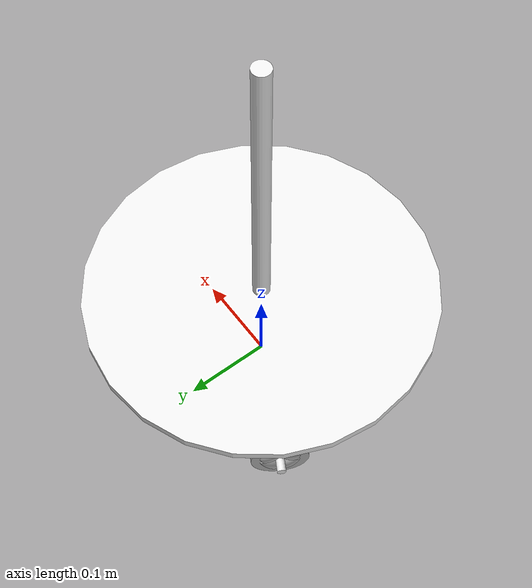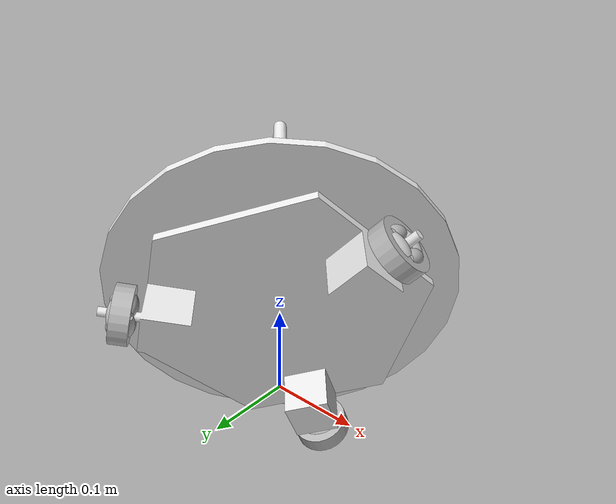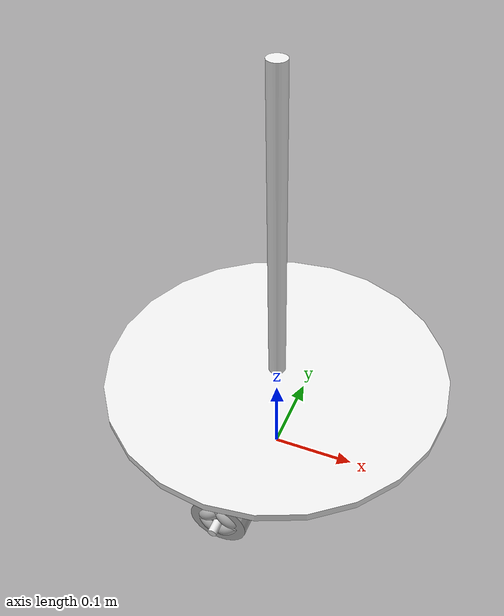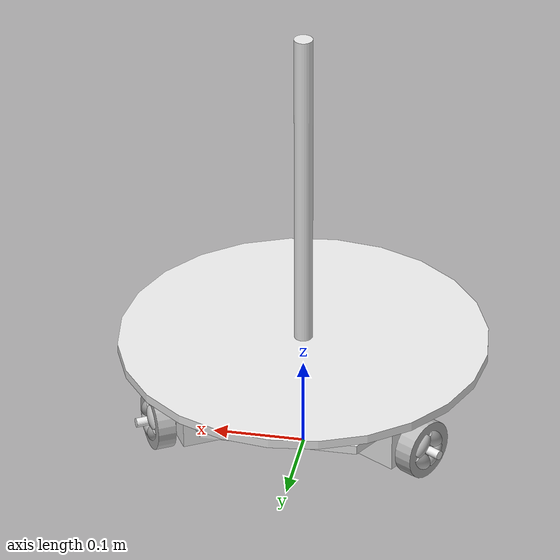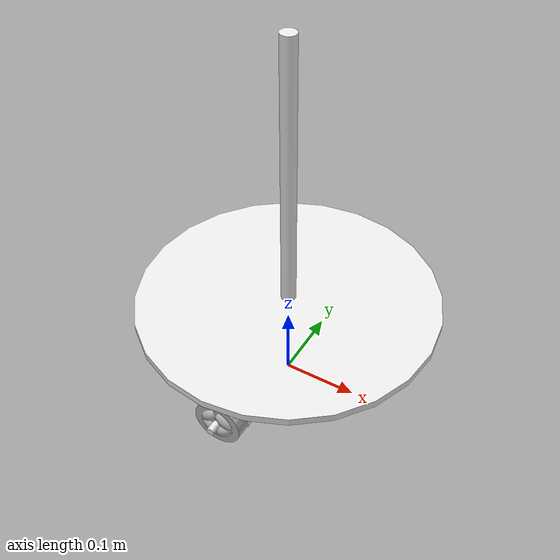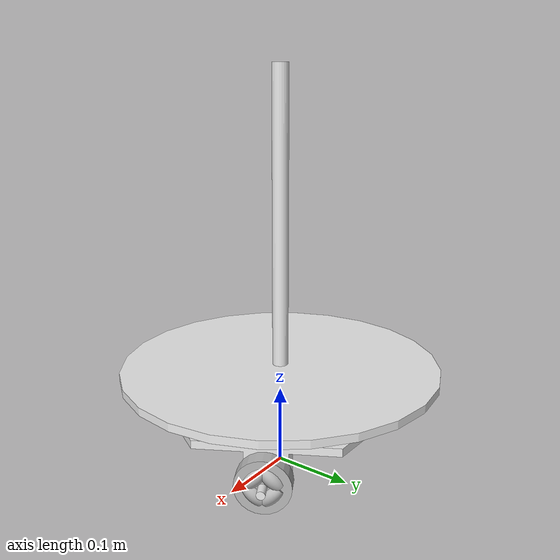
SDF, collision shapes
<sdf version='1.7'>
  <model name='triskarino'>
    <link name='base_link'>
      <inertial>
        <pose>0 0.029512 8.36502 0 -0 0</pose>
        <mass>4.1</mass>
        <inertia>
          <ixx>6939.61</ixx>
          <ixy>2.09097e-10</ixy>
          <ixz>0</ixz>
          <iyy>6939.6</iyy>
          <iyz>0.990704</iyz>
          <izz>11631.8</izz>
        </inertia>
      </inertial>
      <collision name='base_link_fixed_joint_lump__plate_link_collision'>
        <pose>0 0 0.1 3.14159 0.001593 3.14159</pose>
        <geometry>
          <mesh>
            <scale>0.001 0.001 0.001</scale>
            <uri>model://triskarino_description/meshes/robot_base.stl</uri>
          </mesh>
        </geometry>
        <surface>
          <contact>
            <ode>
              <kp>1e+06</kp>
              <kd>1</kd>
            </ode>
          </contact>
          <friction>
            <ode>
              <mu>0</mu>
              <mu2>0</mu2>
            </ode>
          </friction>
        </surface>
        <max_contacts>0</max_contacts>
      </collision>
      <collision name='base_link_fixed_joint_lump__axis_link_collision_1'>
        <pose>0 0 0.3 0 -0 0</pose>
        <geometry>
          <cylinder>
            <length>0.4</length>
            <radius>0.01</radius>
          </cylinder>
        </geometry>
      </collision>
      <collision name='base_link_fixed_joint_lump__layer_0_link_collision_2'>
        <pose>0 0 0.13 0 -0 0</pose>
        <geometry>
          <cylinder>
            <length>0.01</length>
            <radius>0.2</radius>
          </cylinder>
        </geometry>
      </collision>
      <visual name='base_link_fixed_joint_lump__plate_link_visual'>
        <pose>0 0 0.1 3.14159 0.001593 3.14159</pose>
        <geometry>
          <mesh>
            <scale>0.001 0.001 0.001</scale>
            <uri>model://triskarino_description/meshes/robot_base.stl</uri>
          </mesh>
        </geometry>
        <material>
          <script>
            <name>Gazebo/White</name>
            <uri>file://media/materials/scripts/gazebo.material</uri>
          </script>
        </material>
      </visual>
      <visual name='base_link_fixed_joint_lump__axis_link_visual_1'>
        <pose>0 0 0.3 0 -0 0</pose>
        <geometry>
          <cylinder>
            <length>0.4</length>
            <radius>0.01</radius>
          </cylinder>
        </geometry>
      </visual>
      <visual name='base_link_fixed_joint_lump__layer_0_link_visual_2'>
        <pose>0 0 0.13 0 -0 0</pose>
        <geometry>
          <cylinder>
            <length>0.01</length>
            <radius>0.2</radius>
          </cylinder>
        </geometry>
      </visual>
      <visual name='base_link_fixed_joint_lump__laser_mount_visual_3'>
        <pose>0 0.11 0.13 0 -0 1.5708</pose>
        <geometry>
          <mesh>
            <scale>1 1 1</scale>
            <uri>model://triskarino_description/meshes/hokuyo_ust10.stl</uri>
          </mesh>
        </geometry>
        <material>
          <script>
            <name>Gazebo/DarkGrey</name>
            <uri>file://media/materials/scripts/gazebo.material</uri>
          </script>
        </material>
      </visual>
      <gravity>0</gravity>
      <sensor name='laser' type='ray'>
        <visualize>1</visualize>
        <update_rate>10</update_rate>
        <ray>
          <scan>
            <horizontal>
              <samples>720</samples>
              <resolution>1</resolution>
              <min_angle>-2.0944</min_angle>
              <max_angle>2.0944</max_angle>
            </horizontal>
          </scan>
          <range>
            <min>0.01</min>
            <max>30</max>
            <resolution>0.01</resolution>
          </range>
          <noise>
            <type>gaussian</type>
            <mean>0</mean>
            <stddev>0.001</stddev>
          </noise>
        </ray>
        <plugin name='laser_controller' filename='libgazebo_ros_laser.so'>
          <tf_prefix/>
          <frameName>laser</frameName>
          <topicName>scan</topicName>
          <robotNamespace>triskarino</robotNamespace>
        </plugin>
        <pose>0 0.11 0.1774 0 -0 1.5708</pose>
      </sensor>
    </link>
    <joint name='rim_back_joint' type='revolute'>
      <pose relative_to='base_link'>0 -0.165 0.065 1.5708 -0 3.14159</pose>
      <parent>base_link</parent>
      <child>rim_back_link</child>
      <axis>
        <xyz>0 0 1</xyz>
        <limit>
          <lower>-1e+16</lower>
          <upper>1e+16</upper>
        </limit>
        <dynamics>
          <spring_reference>0</spring_reference>
          <spring_stiffness>0</spring_stiffness>
        </dynamics>
      </axis>
    </joint>
    <link name='rim_back_link'>
      <pose relative_to='rim_back_joint'>0 0 0 0 -0 0</pose>
      <inertial>
        <pose>-4e-06 -3e-06 -0.000118 0 -0 0</pose>
        <mass>0.2</mass>
        <inertia>
          <ixx>5.62e-05</ixx>
          <ixy>0</ixy>
          <ixz>0</ixz>
          <iyy>5.62e-05</iyy>
          <iyz>0</iyz>
          <izz>7.735e-05</izz>
        </inertia>
      </inertial>
      <collision name='rim_back_link_collision'>
        <pose>0 0 0 0 -0 0</pose>
        <geometry>
          <cylinder>
            <length>0.02</length>
            <radius>0.032</radius>
          </cylinder>
        </geometry>
        <surface>
          <contact>
            <ode>
              <kp>1e+06</kp>
              <kd>1</kd>
              <min_depth>1e-05</min_depth>
            </ode>
          </contact>
          <friction>
            <ode>
              <mu>0</mu>
              <mu2>0</mu2>
              <fdir1>0 0 1</fdir1>
              <slip1>1</slip1>
              <slip2>1</slip2>
              <max_contacts>2</max_contacts>
            </ode>
          </friction>
        </surface>
      </collision>
      <visual name='rim_back_link_visual'>
        <pose>0 0 0 0 -0 0</pose>
        <geometry>
          <mesh>
            <scale>1 1 1</scale>
            <uri>model://triskarino_description/meshes/rim_scaled.stl</uri>
          </mesh>
        </geometry>
      </visual>
    </link>
    <joint name='roller_e_rim_back_link_joint' type='revolute'>
      <pose relative_to='rim_back_link'>0.01355 0 0.0055 -1.5708 0 0</pose>
      <parent>rim_back_link</parent>
      <child>roller_e_rim_back_link_link</child>
      <axis>
        <xyz>0 0 1</xyz>
        <limit>
          <lower>-1e+16</lower>
          <upper>1e+16</upper>
        </limit>
        <dynamics>
          <spring_reference>0</spring_reference>
          <spring_stiffness>0</spring_stiffness>
        </dynamics>
      </axis>
    </joint>
    <link name='roller_e_rim_back_link_link'>
      <pose relative_to='roller_e_rim_back_link_joint'>0 0 0 0 -0 0</pose>
      <inertial>
        <pose>0 0 -0 0 -0 0</pose>
        <mass>0.05</mass>
        <inertia>
          <ixx>3.28e-06</ixx>
          <ixy>0</ixy>
          <ixz>0</ixz>
          <iyy>3.28e-06</iyy>
          <iyz>0</iyz>
          <izz>1.91e-06</izz>
        </inertia>
      </inertial>
      <collision name='roller_e_rim_back_link_link_collision'>
        <pose>0 0 0 0 -0 0</pose>
        <geometry>
          <mesh>
            <scale>1 1 1</scale>
            <uri>model://triskarino_description/meshes/roller_scaled.stl</uri>
          </mesh>
        </geometry>
        <surface>
          <contact>
            <ode>
              <kp>1e+06</kp>
              <kd>1</kd>
              <min_depth>0.001</min_depth>
            </ode>
          </contact>
          <friction>
            <ode>
              <mu>0</mu>
              <mu2>0</mu2>
            </ode>
          </friction>
        </surface>
        <max_contacts>0</max_contacts>
      </collision>
      <visual name='roller_e_rim_back_link_link_visual'>
        <pose>0 0 0 0 -0 0</pose>
        <geometry>
          <mesh>
            <scale>1 1 1</scale>
            <uri>model://triskarino_description/meshes/roller_scaled.stl</uri>
          </mesh>
        </geometry>
      </visual>
    </link>
    <joint name='roller_n_rim_back_link_joint' type='revolute'>
      <pose relative_to='rim_back_link'>0 0.01355 0.0055 -1.5708 0 1.5708</pose>
      <parent>rim_back_link</parent>
      <child>roller_n_rim_back_link_link</child>
      <axis>
        <xyz>0 0 1</xyz>
        <limit>
          <lower>-1e+16</lower>
          <upper>1e+16</upper>
        </limit>
        <dynamics>
          <spring_reference>0</spring_reference>
          <spring_stiffness>0</spring_stiffness>
        </dynamics>
      </axis>
    </joint>
    <link name='roller_n_rim_back_link_link'>
      <pose relative_to='roller_n_rim_back_link_joint'>0 0 0 0 -0 0</pose>
      <inertial>
        <pose>0 0 -0 0 -0 0</pose>
        <mass>0.05</mass>
        <inertia>
          <ixx>3.28e-06</ixx>
          <ixy>0</ixy>
          <ixz>0</ixz>
          <iyy>3.28e-06</iyy>
          <iyz>0</iyz>
          <izz>1.91e-06</izz>
        </inertia>
      </inertial>
      <collision name='roller_n_rim_back_link_link_collision'>
        <pose>0 0 0 0 -0 0</pose>
        <geometry>
          <mesh>
            <scale>1 1 1</scale>
            <uri>model://triskarino_description/meshes/roller_scaled.stl</uri>
          </mesh>
        </geometry>
        <surface>
          <contact>
            <ode>
              <kp>1e+06</kp>
              <kd>1</kd>
              <min_depth>0.001</min_depth>
            </ode>
          </contact>
          <friction>
            <ode>
              <mu>0</mu>
              <mu2>0</mu2>
            </ode>
          </friction>
        </surface>
        <max_contacts>0</max_contacts>
      </collision>
      <visual name='roller_n_rim_back_link_link_visual'>
        <pose>0 0 0 0 -0 0</pose>
        <geometry>
          <mesh>
            <scale>1 1 1</scale>
            <uri>model://triskarino_description/meshes/roller_scaled.stl</uri>
          </mesh>
        </geometry>
      </visual>
    </link>
    <joint name='roller_ne_rim_back_link_joint' type='revolute'>
      <pose relative_to='rim_back_link'>0.009581 0.009581 -0.0055 -1.5708 -0 0.785398</pose>
      <parent>rim_back_link</parent>
      <child>roller_ne_rim_back_link_link</child>
      <axis>
        <xyz>0 0 1</xyz>
        <limit>
          <lower>-1e+16</lower>
          <upper>1e+16</upper>
        </limit>
        <dynamics>
          <spring_reference>0</spring_reference>
          <spring_stiffness>0</spring_stiffness>
        </dynamics>
      </axis>
    </joint>
    <link name='roller_ne_rim_back_link_link'>
      <pose relative_to='roller_ne_rim_back_link_joint'>0 0 0 0 -0 0</pose>
      <inertial>
        <pose>0 0 -0 0 -0 0</pose>
        <mass>0.05</mass>
        <inertia>
          <ixx>3.28e-06</ixx>
          <ixy>0</ixy>
          <ixz>0</ixz>
          <iyy>3.28e-06</iyy>
          <iyz>0</iyz>
          <izz>1.91e-06</izz>
        </inertia>
      </inertial>
      <collision name='roller_ne_rim_back_link_link_collision'>
        <pose>0 0 0 0 -0 0</pose>
        <geometry>
          <mesh>
            <scale>1 1 1</scale>
            <uri>model://triskarino_description/meshes/roller_scaled.stl</uri>
          </mesh>
        </geometry>
        <surface>
          <contact>
            <ode>
              <kp>1e+06</kp>
              <kd>1</kd>
              <min_depth>0.001</min_depth>
            </ode>
          </contact>
          <friction>
            <ode>
              <mu>0</mu>
              <mu2>0</mu2>
            </ode>
          </friction>
        </surface>
        <max_contacts>0</max_contacts>
      </collision>
      <visual name='roller_ne_rim_back_link_link_visual'>
        <pose>0 0 0 0 -0 0</pose>
        <geometry>
          <mesh>
            <scale>1 1 1</scale>
            <uri>model://triskarino_description/meshes/roller_scaled.stl</uri>
          </mesh>
        </geometry>
      </visual>
    </link>
    <joint name='roller_nw_rim_back_link_joint' type='revolute'>
      <pose relative_to='rim_back_link'>-0.009581 0.009581 -0.0055 -1.5708 0 2.35619</pose>
      <parent>rim_back_link</parent>
      <child>roller_nw_rim_back_link_link</child>
      <axis>
        <xyz>0 0 1</xyz>
        <limit>
          <lower>-1e+16</lower>
          <upper>1e+16</upper>
        </limit>
        <dynamics>
          <spring_reference>0</spring_reference>
          <spring_stiffness>0</spring_stiffness>
        </dynamics>
      </axis>
    </joint>
    <link name='roller_nw_rim_back_link_link'>
      <pose relative_to='roller_nw_rim_back_link_joint'>0 0 0 0 -0 0</pose>
      <inertial>
        <pose>0 0 -0 0 -0 0</pose>
        <mass>0.05</mass>
        <inertia>
          <ixx>3.28e-06</ixx>
          <ixy>0</ixy>
          <ixz>0</ixz>
          <iyy>3.28e-06</iyy>
          <iyz>0</iyz>
          <izz>1.91e-06</izz>
        </inertia>
      </inertial>
      <collision name='roller_nw_rim_back_link_link_collision'>
        <pose>0 0 0 0 -0 0</pose>
        <geometry>
          <mesh>
            <scale>1 1 1</scale>
            <uri>model://triskarino_description/meshes/roller_scaled.stl</uri>
          </mesh>
        </geometry>
        <surface>
          <contact>
            <ode>
              <kp>1e+06</kp>
              <kd>1</kd>
              <min_depth>0.001</min_depth>
            </ode>
          </contact>
          <friction>
            <ode>
              <mu>0</mu>
              <mu2>0</mu2>
            </ode>
          </friction>
        </surface>
        <max_contacts>0</max_contacts>
      </collision>
      <visual name='roller_nw_rim_back_link_link_visual'>
        <pose>0 0 0 0 -0 0</pose>
        <geometry>
          <mesh>
            <scale>1 1 1</scale>
            <uri>model://triskarino_description/meshes/roller_scaled.stl</uri>
          </mesh>
        </geometry>
      </visual>
    </link>
    <joint name='roller_s_rim_back_link_joint' type='revolute'>
      <pose relative_to='rim_back_link'>0 -0.01355 0.0055 -1.5708 -0 -1.5708</pose>
      <parent>rim_back_link</parent>
      <child>roller_s_rim_back_link_link</child>
      <axis>
        <xyz>0 0 1</xyz>
        <limit>
          <lower>-1e+16</lower>
          <upper>1e+16</upper>
        </limit>
        <dynamics>
          <spring_reference>0</spring_reference>
          <spring_stiffness>0</spring_stiffness>
        </dynamics>
      </axis>
    </joint>
    <link name='roller_s_rim_back_link_link'>
      <pose relative_to='roller_s_rim_back_link_joint'>0 0 0 0 -0 0</pose>
      <inertial>
        <pose>0 0 -0 0 -0 0</pose>
        <mass>0.05</mass>
        <inertia>
          <ixx>3.28e-06</ixx>
          <ixy>0</ixy>
          <ixz>0</ixz>
          <iyy>3.28e-06</iyy>
          <iyz>0</iyz>
          <izz>1.91e-06</izz>
        </inertia>
      </inertial>
      <collision name='roller_s_rim_back_link_link_collision'>
        <pose>0 0 0 0 -0 0</pose>
        <geometry>
          <mesh>
            <scale>1 1 1</scale>
            <uri>model://triskarino_description/meshes/roller_scaled.stl</uri>
          </mesh>
        </geometry>
        <surface>
          <contact>
            <ode>
              <kp>1e+06</kp>
              <kd>1</kd>
              <min_depth>0.001</min_depth>
            </ode>
          </contact>
          <friction>
            <ode>
              <mu>0</mu>
              <mu2>0</mu2>
            </ode>
          </friction>
        </surface>
        <max_contacts>0</max_contacts>
      </collision>
      <visual name='roller_s_rim_back_link_link_visual'>
        <pose>0 0 0 0 -0 0</pose>
        <geometry>
          <mesh>
            <scale>1 1 1</scale>
            <uri>model://triskarino_description/meshes/roller_scaled.stl</uri>
          </mesh>
        </geometry>
      </visual>
    </link>
    <joint name='roller_se_rim_back_link_joint' type='revolute'>
      <pose relative_to='rim_back_link'>0.009581 -0.009581 -0.0055 -1.5708 0 -0.785398</pose>
      <parent>rim_back_link</parent>
      <child>roller_se_rim_back_link_link</child>
      <axis>
        <xyz>0 0 1</xyz>
        <limit>
          <lower>-1e+16</lower>
          <upper>1e+16</upper>
        </limit>
        <dynamics>
          <spring_reference>0</spring_reference>
          <spring_stiffness>0</spring_stiffness>
        </dynamics>
      </axis>
    </joint>
    <link name='roller_se_rim_back_link_link'>
      <pose relative_to='roller_se_rim_back_link_joint'>0 0 0 0 -0 0</pose>
      <inertial>
        <pose>0 0 -0 0 -0 0</pose>
        <mass>0.05</mass>
        <inertia>
          <ixx>3.28e-06</ixx>
          <ixy>0</ixy>
          <ixz>0</ixz>
          <iyy>3.28e-06</iyy>
          <iyz>0</iyz>
          <izz>1.91e-06</izz>
        </inertia>
      </inertial>
      <collision name='roller_se_rim_back_link_link_collision'>
        <pose>0 0 0 0 -0 0</pose>
        <geometry>
          <mesh>
            <scale>1 1 1</scale>
            <uri>model://triskarino_description/meshes/roller_scaled.stl</uri>
          </mesh>
        </geometry>
        <surface>
          <contact>
            <ode>
              <kp>1e+06</kp>
              <kd>1</kd>
              <min_depth>0.001</min_depth>
            </ode>
          </contact>
          <friction>
            <ode>
              <mu>0</mu>
              <mu2>0</mu2>
            </ode>
          </friction>
        </surface>
        <max_contacts>0</max_contacts>
      </collision>
      <visual name='roller_se_rim_back_link_link_visual'>
        <pose>0 0 0 0 -0 0</pose>
        <geometry>
          <mesh>
            <scale>1 1 1</scale>
            <uri>model://triskarino_description/meshes/roller_scaled.stl</uri>
          </mesh>
        </geometry>
      </visual>
    </link>
    <joint name='roller_sw_rim_back_link_joint' type='revolute'>
      <pose relative_to='rim_back_link'>-0.009581 -0.009581 -0.0055 -1.5708 -0 -2.35619</pose>
      <parent>rim_back_link</parent>
      <child>roller_sw_rim_back_link_link</child>
      <axis>
        <xyz>0 0 1</xyz>
        <limit>
          <lower>-1e+16</lower>
          <upper>1e+16</upper>
        </limit>
        <dynamics>
          <spring_reference>0</spring_reference>
          <spring_stiffness>0</spring_stiffness>
        </dynamics>
      </axis>
    </joint>
    <link name='roller_sw_rim_back_link_link'>
      <pose relative_to='roller_sw_rim_back_link_joint'>0 0 0 0 -0 0</pose>
      <inertial>
        <pose>0 0 -0 0 -0 0</pose>
        <mass>0.05</mass>
        <inertia>
          <ixx>3.28e-06</ixx>
          <ixy>0</ixy>
          <ixz>0</ixz>
          <iyy>3.28e-06</iyy>
          <iyz>0</iyz>
          <izz>1.91e-06</izz>
        </inertia>
      </inertial>
      <collision name='roller_sw_rim_back_link_link_collision'>
        <pose>0 0 0 0 -0 0</pose>
        <geometry>
          <mesh>
            <scale>1 1 1</scale>
            <uri>model://triskarino_description/meshes/roller_scaled.stl</uri>
          </mesh>
        </geometry>
        <surface>
          <contact>
            <ode>
              <kp>1e+06</kp>
              <kd>1</kd>
              <min_depth>0.001</min_depth>
            </ode>
          </contact>
          <friction>
            <ode>
              <mu>0</mu>
              <mu2>0</mu2>
            </ode>
          </friction>
        </surface>
        <max_contacts>0</max_contacts>
      </collision>
      <visual name='roller_sw_rim_back_link_link_visual'>
        <pose>0 0 0 0 -0 0</pose>
        <geometry>
          <mesh>
            <scale>1 1 1</scale>
            <uri>model://triskarino_description/meshes/roller_scaled.stl</uri>
          </mesh>
        </geometry>
      </visual>
    </link>
    <joint name='roller_w_rim_back_link_joint' type='revolute'>
      <pose relative_to='rim_back_link'>-0.01355 0 0.0055 -1.5708 -0 3.14159</pose>
      <parent>rim_back_link</parent>
      <child>roller_w_rim_back_link_link</child>
      <axis>
        <xyz>0 0 1</xyz>
        <limit>
          <lower>-1e+16</lower>
          <upper>1e+16</upper>
        </limit>
        <dynamics>
          <spring_reference>0</spring_reference>
          <spring_stiffness>0</spring_stiffness>
        </dynamics>
      </axis>
    </joint>
    <link name='roller_w_rim_back_link_link'>
      <pose relative_to='roller_w_rim_back_link_joint'>0 0 0 0 -0 0</pose>
      <inertial>
        <pose>0 0 -0 0 -0 0</pose>
        <mass>0.05</mass>
        <inertia>
          <ixx>3.28e-06</ixx>
          <ixy>0</ixy>
          <ixz>0</ixz>
          <iyy>3.28e-06</iyy>
          <iyz>0</iyz>
          <izz>1.91e-06</izz>
        </inertia>
      </inertial>
      <collision name='roller_w_rim_back_link_link_collision'>
        <pose>0 0 0 0 -0 0</pose>
        <geometry>
          <mesh>
            <scale>1 1 1</scale>
            <uri>model://triskarino_description/meshes/roller_scaled.stl</uri>
          </mesh>
        </geometry>
        <surface>
          <contact>
            <ode>
              <kp>1e+06</kp>
              <kd>1</kd>
              <min_depth>0.001</min_depth>
            </ode>
          </contact>
          <friction>
            <ode>
              <mu>0</mu>
              <mu2>0</mu2>
            </ode>
          </friction>
        </surface>
        <max_contacts>0</max_contacts>
      </collision>
      <visual name='roller_w_rim_back_link_link_visual'>
        <pose>0 0 0 0 -0 0</pose>
        <geometry>
          <mesh>
            <scale>1 1 1</scale>
            <uri>model://triskarino_description/meshes/roller_scaled.stl</uri>
          </mesh>
        </geometry>
      </visual>
    </link>
    <joint name='rim_left_joint' type='revolute'>
      <pose relative_to='base_link'>-0.142894 0.0825 0.065 1.5708 0 1.0472</pose>
      <parent>base_link</parent>
      <child>rim_left_link</child>
      <axis>
        <xyz>0 0 1</xyz>
        <limit>
          <lower>-1e+16</lower>
          <upper>1e+16</upper>
        </limit>
        <dynamics>
          <spring_reference>0</spring_reference>
          <spring_stiffness>0</spring_stiffness>
        </dynamics>
      </axis>
    </joint>
    <link name='rim_left_link'>
      <pose relative_to='rim_left_joint'>0 0 0 0 -0 0</pose>
      <inertial>
        <pose>-4e-06 -3e-06 -0.000118 0 -0 0</pose>
        <mass>0.2</mass>
        <inertia>
          <ixx>5.62e-05</ixx>
          <ixy>0</ixy>
          <ixz>0</ixz>
          <iyy>5.62e-05</iyy>
          <iyz>0</iyz>
          <izz>7.735e-05</izz>
        </inertia>
      </inertial>
      <collision name='rim_left_link_collision'>
        <pose>0 0 0 0 -0 0</pose>
        <geometry>
          <cylinder>
            <length>0.02</length>
            <radius>0.032</radius>
          </cylinder>
        </geometry>
        <surface>
          <contact>
            <ode>
              <kp>1e+06</kp>
              <kd>1</kd>
              <min_depth>1e-05</min_depth>
            </ode>
          </contact>
          <friction>
            <ode>
              <mu>0</mu>
              <mu2>0</mu2>
              <fdir1>0 0 1</fdir1>
              <slip1>1</slip1>
              <slip2>1</slip2>
              <max_contacts>2</max_contacts>
            </ode>
          </friction>
        </surface>
      </collision>
      <visual name='rim_left_link_visual'>
        <pose>0 0 0 0 -0 0</pose>
        <geometry>
          <mesh>
            <scale>1 1 1</scale>
            <uri>model://triskarino_description/meshes/rim_scaled.stl</uri>
          </mesh>
        </geometry>
      </visual>
    </link>
    <joint name='roller_e_rim_left_link_joint' type='revolute'>
      <pose relative_to='rim_left_link'>0.01355 0 0.0055 -1.5708 0 0</pose>
      <parent>rim_left_link</parent>
      <child>roller_e_rim_left_link_link</child>
      <axis>
        <xyz>0 0 1</xyz>
        <limit>
          <lower>-1e+16</lower>
          <upper>1e+16</upper>
        </limit>
        <dynamics>
          <spring_reference>0</spring_reference>
          <spring_stiffness>0</spring_stiffness>
        </dynamics>
      </axis>
    </joint>
    <link name='roller_e_rim_left_link_link'>
      <pose relative_to='roller_e_rim_left_link_joint'>0 0 0 0 -0 0</pose>
      <inertial>
        <pose>0 0 -0 0 -0 0</pose>
        <mass>0.05</mass>
        <inertia>
          <ixx>3.28e-06</ixx>
          <ixy>0</ixy>
          <ixz>0</ixz>
          <iyy>3.28e-06</iyy>
          <iyz>0</iyz>
          <izz>1.91e-06</izz>
        </inertia>
      </inertial>
      <collision name='roller_e_rim_left_link_link_collision'>
        <pose>0 0 0 0 -0 0</pose>
        <geometry>
          <mesh>
            <scale>1 1 1</scale>
            <uri>model://triskarino_description/meshes/roller_scaled.stl</uri>
          </mesh>
        </geometry>
        <surface>
          <contact>
            <ode>
              <kp>1e+06</kp>
              <kd>1</kd>
              <min_depth>0.001</min_depth>
            </ode>
          </contact>
          <friction>
            <ode>
              <mu>0</mu>
              <mu2>0</mu2>
            </ode>
          </friction>
        </surface>
        <max_contacts>0</max_contacts>
      </collision>
      <visual name='roller_e_rim_left_link_link_visual'>
        <pose>0 0 0 0 -0 0</pose>
        <geometry>
          <mesh>
            <scale>1 1 1</scale>
            <uri>model://triskarino_description/meshes/roller_scaled.stl</uri>
          </mesh>
        </geometry>
      </visual>
    </link>
    <joint name='roller_n_rim_left_link_joint' type='revolute'>
      <pose relative_to='rim_left_link'>0 0.01355 0.0055 -1.5708 0 1.5708</pose>
      <parent>rim_left_link</parent>
      <child>roller_n_rim_left_link_link</child>
      <axis>
        <xyz>0 0 1</xyz>
        <limit>
          <lower>-1e+16</lower>
          <upper>1e+16</upper>
        </limit>
        <dynamics>
          <spring_reference>0</spring_reference>
          <spring_stiffness>0</spring_stiffness>
        </dynamics>
      </axis>
    </joint>
    <link name='roller_n_rim_left_link_link'>
      <pose relative_to='roller_n_rim_left_link_joint'>0 0 0 0 -0 0</pose>
      <inertial>
        <pose>0 0 -0 0 -0 0</pose>
        <mass>0.05</mass>
        <inertia>
          <ixx>3.28e-06</ixx>
          <ixy>0</ixy>
          <ixz>0</ixz>
          <iyy>3.28e-06</iyy>
          <iyz>0</iyz>
          <izz>1.91e-06</izz>
        </inertia>
      </inertial>
      <collision name='roller_n_rim_left_link_link_collision'>
        <pose>0 0 0 0 -0 0</pose>
        <geometry>
          <mesh>
            <scale>1 1 1</scale>
            <uri>model://triskarino_description/meshes/roller_scaled.stl</uri>
          </mesh>
        </geometry>
        <surface>
          <contact>
            <ode>
              <kp>1e+06</kp>
              <kd>1</kd>
              <min_depth>0.001</min_depth>
            </ode>
          </contact>
          <friction>
            <ode>
              <mu>0</mu>
              <mu2>0</mu2>
            </ode>
          </friction>
        </surface>
        <max_contacts>0</max_contacts>
      </collision>
      <visual name='roller_n_rim_left_link_link_visual'>
        <pose>0 0 0 0 -0 0</pose>
        <geometry>
          <mesh>
            <scale>1 1 1</scale>
            <uri>model://triskarino_description/meshes/roller_scaled.stl</uri>
          </mesh>
        </geometry>
      </visual>
    </link>
    <joint name='roller_ne_rim_left_link_joint' type='revolute'>
      <pose relative_to='rim_left_link'>0.009581 0.009581 -0.0055 -1.5708 -0 0.785398</pose>
      <parent>rim_left_link</parent>
      <child>roller_ne_rim_left_link_link</child>
      <axis>
        <xyz>0 0 1</xyz>
        <limit>
          <lower>-1e+16</lower>
          <upper>1e+16</upper>
        </limit>
        <dynamics>
          <spring_reference>0</spring_reference>
          <spring_stiffness>0</spring_stiffness>
        </dynamics>
      </axis>
    </joint>
    <link name='roller_ne_rim_left_link_link'>
      <pose relative_to='roller_ne_rim_left_link_joint'>0 0 0 0 -0 0</pose>
      <inertial>
        <pose>0 0 -0 0 -0 0</pose>
        <mass>0.05</mass>
        <inertia>
          <ixx>3.28e-06</ixx>
          <ixy>0</ixy>
          <ixz>0</ixz>
          <iyy>3.28e-06</iyy>
          <iyz>0</iyz>
          <izz>1.91e-06</izz>
        </inertia>
      </inertial>
      <collision name='roller_ne_rim_left_link_link_collision'>
        <pose>0 0 0 0 -0 0</pose>
        <geometry>
          <mesh>
            <scale>1 1 1</scale>
            <uri>model://triskarino_description/meshes/roller_scaled.stl</uri>
          </mesh>
        </geometry>
        <surface>
          <contact>
            <ode>
              <kp>1e+06</kp>
              <kd>1</kd>
              <min_depth>0.001</min_depth>
            </ode>
          </contact>
          <friction>
            <ode>
              <mu>0</mu>
              <mu2>0</mu2>
            </ode>
          </friction>
        </surface>
        <max_contacts>0</max_contacts>
      </collision>
      <visual name='roller_ne_rim_left_link_link_visual'>
        <pose>0 0 0 0 -0 0</pose>
        <geometry>
          <mesh>
            <scale>1 1 1</scale>
            <uri>model://triskarino_description/meshes/roller_scaled.stl</uri>
          </mesh>
        </geometry>
      </visual>
    </link>
    <joint name='roller_nw_rim_left_link_joint' type='revolute'>
      <pose relative_to='rim_left_link'>-0.009581 0.009581 -0.0055 -1.5708 0 2.35619</pose>
      <parent>rim_left_link</parent>
      <child>roller_nw_rim_left_link_link</child>
      <axis>
        <xyz>0 0 1</xyz>
        <limit>
          <lower>-1e+16</lower>
          <upper>1e+16</upper>
        </limit>
        <dynamics>
          <spring_reference>0</spring_reference>
          <spring_stiffness>0</spring_stiffness>
        </dynamics>
      </axis>
    </joint>
    <link name='roller_nw_rim_left_link_link'>
      <pose relative_to='roller_nw_rim_left_link_joint'>0 0 0 0 -0 0</pose>
      <inertial>
        <pose>0 0 -0 0 -0 0</pose>
        <mass>0.05</mass>
        <inertia>
          <ixx>3.28e-06</ixx>
          <ixy>0</ixy>
          <ixz>0</ixz>
          <iyy>3.28e-06</iyy>
          <iyz>0</iyz>
          <izz>1.91e-06</izz>
        </inertia>
      </inertial>
      <collision name='roller_nw_rim_left_link_link_collision'>
        <pose>0 0 0 0 -0 0</pose>
        <geometry>
          <mesh>
            <scale>1 1 1</scale>
            <uri>model://triskarino_description/meshes/roller_scaled.stl</uri>
          </mesh>
        </geometry>
        <surface>
          <contact>
            <ode>
              <kp>1e+06</kp>
              <kd>1</kd>
              <min_depth>0.001</min_depth>
            </ode>
          </contact>
          <friction>
            <ode>
              <mu>0</mu>
              <mu2>0</mu2>
            </ode>
          </friction>
        </surface>
        <max_contacts>0</max_contacts>
      </collision>
      <visual name='roller_nw_rim_left_link_link_visual'>
        <pose>0 0 0 0 -0 0</pose>
        <geometry>
          <mesh>
            <scale>1 1 1</scale>
            <uri>model://triskarino_description/meshes/roller_scaled.stl</uri>
          </mesh>
        </geometry>
      </visual>
    </link>
    <joint name='roller_s_rim_left_link_joint' type='revolute'>
      <pose relative_to='rim_left_link'>0 -0.01355 0.0055 -1.5708 -0 -1.5708</pose>
      <parent>rim_left_link</parent>
      <child>roller_s_rim_left_link_link</child>
      <axis>
        <xyz>0 0 1</xyz>
        <limit>
          <lower>-1e+16</lower>
          <upper>1e+16</upper>
        </limit>
        <dynamics>
          <spring_reference>0</spring_reference>
          <spring_stiffness>0</spring_stiffness>
        </dynamics>
      </axis>
    </joint>
    <link name='roller_s_rim_left_link_link'>
      <pose relative_to='roller_s_rim_left_link_joint'>0 0 0 0 -0 0</pose>
      <inertial>
        <pose>0 0 -0 0 -0 0</pose>
        <mass>0.05</mass>
        <inertia>
          <ixx>3.28e-06</ixx>
          <ixy>0</ixy>
          <ixz>0</ixz>
          <iyy>3.28e-06</iyy>
          <iyz>0</iyz>
          <izz>1.91e-06</izz>
        </inertia>
      </inertial>
      <collision name='roller_s_rim_left_link_link_collision'>
        <pose>0 0 0 0 -0 0</pose>
        <geometry>
          <mesh>
            <scale>1 1 1</scale>
            <uri>model://triskarino_description/meshes/roller_scaled.stl</uri>
          </mesh>
        </geometry>
        <surface>
          <contact>
            <ode>
              <kp>1e+06</kp>
              <kd>1</kd>
              <min_depth>0.001</min_depth>
            </ode>
          </contact>
          <friction>
            <ode>
              <mu>0</mu>
              <mu2>0</mu2>
            </ode>
          </friction>
        </surface>
        <max_contacts>0</max_contacts>
      </collision>
      <visual name='roller_s_rim_left_link_link_visual'>
        <pose>0 0 0 0 -0 0</pose>
        <geometry>
          <mesh>
            <scale>1 1 1</scale>
            <uri>model://triskarino_description/meshes/roller_scaled.stl</uri>
          </mesh>
        </geometry>
      </visual>
    </link>
    <joint name='roller_se_rim_left_link_joint' type='revolute'>
      <pose relative_to='rim_left_link'>0.009581 -0.009581 -0.0055 -1.5708 0 -0.785398</pose>
      <parent>rim_left_link</parent>
      <child>roller_se_rim_left_link_link</child>
      <axis>
        <xyz>0 0 1</xyz>
        <limit>
          <lower>-1e+16</lower>
          <upper>1e+16</upper>
        </limit>
        <dynamics>
          <spring_reference>0</spring_reference>
          <spring_stiffness>0</spring_stiffness>
        </dynamics>
      </axis>
    </joint>
    <link name='roller_se_rim_left_link_link'>
      <pose relative_to='roller_se_rim_left_link_joint'>0 0 0 0 -0 0</pose>
      <inertial>
        <pose>0 0 -0 0 -0 0</pose>
        <mass>0.05</mass>
        <inertia>
          <ixx>3.28e-06</ixx>
          <ixy>0</ixy>
          <ixz>0</ixz>
          <iyy>3.28e-06</iyy>
          <iyz>0</iyz>
          <izz>1.91e-06</izz>
        </inertia>
      </inertial>
      <collision name='roller_se_rim_left_link_link_collision'>
        <pose>0 0 0 0 -0 0</pose>
        <geometry>
          <mesh>
            <scale>1 1 1</scale>
            <uri>model://triskarino_description/meshes/roller_scaled.stl</uri>
          </mesh>
        </geometry>
        <surface>
          <contact>
            <ode>
              <kp>1e+06</kp>
              <kd>1</kd>
              <min_depth>0.001</min_depth>
            </ode>
          </contact>
          <friction>
            <ode>
              <mu>0</mu>
              <mu2>0</mu2>
            </ode>
          </friction>
        </surface>
        <max_contacts>0</max_contacts>
      </collision>
      <visual name='roller_se_rim_left_link_link_visual'>
        <pose>0 0 0 0 -0 0</pose>
        <geometry>
          <mesh>
            <scale>1 1 1</scale>
            <uri>model://triskarino_description/meshes/roller_scaled.stl</uri>
          </mesh>
        </geometry>
      </visual>
    </link>
    <joint name='roller_sw_rim_left_link_joint' type='revolute'>
      <pose relative_to='rim_left_link'>-0.009581 -0.009581 -0.0055 -1.5708 -0 -2.35619</pose>
      <parent>rim_left_link</parent>
      <child>roller_sw_rim_left_link_link</child>
      <axis>
        <xyz>0 0 1</xyz>
        <limit>
          <lower>-1e+16</lower>
          <upper>1e+16</upper>
        </limit>
        <dynamics>
          <spring_reference>0</spring_reference>
          <spring_stiffness>0</spring_stiffness>
        </dynamics>
      </axis>
    </joint>
    <link name='roller_sw_rim_left_link_link'>
      <pose relative_to='roller_sw_rim_left_link_joint'>0 0 0 0 -0 0</pose>
      <inertial>
        <pose>0 0 -0 0 -0 0</pose>
        <mass>0.05</mass>
        <inertia>
          <ixx>3.28e-06</ixx>
          <ixy>0</ixy>
          <ixz>0</ixz>
          <iyy>3.28e-06</iyy>
          <iyz>0</iyz>
          <izz>1.91e-06</izz>
        </inertia>
      </inertial>
      <collision name='roller_sw_rim_left_link_link_collision'>
        <pose>0 0 0 0 -0 0</pose>
        <geometry>
          <mesh>
            <scale>1 1 1</scale>
            <uri>model://triskarino_description/meshes/roller_scaled.stl</uri>
          </mesh>
        </geometry>
        <surface>
          <contact>
            <ode>
              <kp>1e+06</kp>
              <kd>1</kd>
              <min_depth>0.001</min_depth>
            </ode>
          </contact>
          <friction>
            <ode>
              <mu>0</mu>
              <mu2>0</mu2>
            </ode>
          </friction>
        </surface>
        <max_contacts>0</max_contacts>
      </collision>
      <visual name='roller_sw_rim_left_link_link_visual'>
        <pose>0 0 0 0 -0 0</pose>
        <geometry>
          <mesh>
            <scale>1 1 1</scale>
            <uri>model://triskarino_description/meshes/roller_scaled.stl</uri>
          </mesh>
        </geometry>
      </visual>
    </link>
    <joint name='roller_w_rim_left_link_joint' type='revolute'>
      <pose relative_to='rim_left_link'>-0.01355 0 0.0055 -1.5708 -0 3.14159</pose>
      <parent>rim_left_link</parent>
      <child>roller_w_rim_left_link_link</child>
      <axis>
        <xyz>0 0 1</xyz>
        <limit>
          <lower>-1e+16</lower>
          <upper>1e+16</upper>
        </limit>
        <dynamics>
          <spring_reference>0</spring_reference>
          <spring_stiffness>0</spring_stiffness>
        </dynamics>
      </axis>
    </joint>
    <link name='roller_w_rim_left_link_link'>
      <pose relative_to='roller_w_rim_left_link_joint'>0 0 0 0 -0 0</pose>
      <inertial>
        <pose>0 0 -0 0 -0 0</pose>
        <mass>0.05</mass>
        <inertia>
          <ixx>3.28e-06</ixx>
          <ixy>0</ixy>
          <ixz>0</ixz>
          <iyy>3.28e-06</iyy>
          <iyz>0</iyz>
          <izz>1.91e-06</izz>
        </inertia>
      </inertial>
      <collision name='roller_w_rim_left_link_link_collision'>
        <pose>0 0 0 0 -0 0</pose>
        <geometry>
          <mesh>
            <scale>1 1 1</scale>
            <uri>model://triskarino_description/meshes/roller_scaled.stl</uri>
          </mesh>
        </geometry>
        <surface>
          <contact>
            <ode>
              <kp>1e+06</kp>
              <kd>1</kd>
              <min_depth>0.001</min_depth>
            </ode>
          </contact>
          <friction>
            <ode>
              <mu>0</mu>
              <mu2>0</mu2>
            </ode>
          </friction>
        </surface>
        <max_contacts>0</max_contacts>
      </collision>
      <visual name='roller_w_rim_left_link_link_visual'>
        <pose>0 0 0 0 -0 0</pose>
        <geometry>
          <mesh>
            <scale>1 1 1</scale>
            <uri>model://triskarino_description/meshes/roller_scaled.stl</uri>
          </mesh>
        </geometry>
      </visual>
    </link>
    <joint name='rim_right_joint' type='revolute'>
      <pose relative_to='base_link'>0.142894 0.0825 0.065 1.5708 -0 -1.0472</pose>
      <parent>base_link</parent>
      <child>rim_right_link</child>
      <axis>
        <xyz>0 0 1</xyz>
        <limit>
          <lower>-1e+16</lower>
          <upper>1e+16</upper>
        </limit>
        <dynamics>
          <spring_reference>0</spring_reference>
          <spring_stiffness>0</spring_stiffness>
        </dynamics>
      </axis>
    </joint>
    <link name='rim_right_link'>
      <pose relative_to='rim_right_joint'>0 0 0 0 -0 0</pose>
      <inertial>
        <pose>-4e-06 -3e-06 -0.000118 0 -0 0</pose>
        <mass>0.2</mass>
        <inertia>
          <ixx>5.62e-05</ixx>
          <ixy>0</ixy>
          <ixz>0</ixz>
          <iyy>5.62e-05</iyy>
          <iyz>0</iyz>
          <izz>7.735e-05</izz>
        </inertia>
      </inertial>
      <collision name='rim_right_link_collision'>
        <pose>0 0 0 0 -0 0</pose>
        <geometry>
          <cylinder>
            <length>0.02</length>
            <radius>0.032</radius>
          </cylinder>
        </geometry>
        <surface>
          <contact>
            <ode>
              <kp>1e+06</kp>
              <kd>1</kd>
              <min_depth>1e-05</min_depth>
            </ode>
          </contact>
          <friction>
            <ode>
              <mu>0</mu>
              <mu2>0</mu2>
              <fdir1>0 0 1</fdir1>
              <slip1>1</slip1>
              <slip2>1</slip2>
              <max_contacts>2</max_contacts>
            </ode>
          </friction>
        </surface>
      </collision>
      <visual name='rim_right_link_visual'>
        <pose>0 0 0 0 -0 0</pose>
        <geometry>
          <mesh>
            <scale>1 1 1</scale>
            <uri>model://triskarino_description/meshes/rim_scaled.stl</uri>
          </mesh>
        </geometry>
      </visual>
    </link>
    <joint name='roller_e_rim_right_link_joint' type='revolute'>
      <pose relative_to='rim_right_link'>0.01355 0 0.0055 -1.5708 0 0</pose>
      <parent>rim_right_link</parent>
      <child>roller_e_rim_right_link_link</child>
      <axis>
        <xyz>0 0 1</xyz>
        <limit>
          <lower>-1e+16</lower>
          <upper>1e+16</upper>
        </limit>
        <dynamics>
          <spring_reference>0</spring_reference>
          <spring_stiffness>0</spring_stiffness>
        </dynamics>
      </axis>
    </joint>
    <link name='roller_e_rim_right_link_link'>
      <pose relative_to='roller_e_rim_right_link_joint'>0 0 0 0 -0 0</pose>
      <inertial>
        <pose>0 0 -0 0 -0 0</pose>
        <mass>0.05</mass>
        <inertia>
          <ixx>3.28e-06</ixx>
          <ixy>0</ixy>
          <ixz>0</ixz>
          <iyy>3.28e-06</iyy>
          <iyz>0</iyz>
          <izz>1.91e-06</izz>
        </inertia>
      </inertial>
      <collision name='roller_e_rim_right_link_link_collision'>
        <pose>0 0 0 0 -0 0</pose>
        <geometry>
          <mesh>
            <scale>1 1 1</scale>
            <uri>model://triskarino_description/meshes/roller_scaled.stl</uri>
          </mesh>
        </geometry>
        <surface>
          <contact>
            <ode>
              <kp>1e+06</kp>
              <kd>1</kd>
              <min_depth>0.001</min_depth>
            </ode>
          </contact>
          <friction>
            <ode>
              <mu>0</mu>
              <mu2>0</mu2>
            </ode>
          </friction>
        </surface>
        <max_contacts>0</max_contacts>
      </collision>
      <visual name='roller_e_rim_right_link_link_visual'>
        <pose>0 0 0 0 -0 0</pose>
        <geometry>
          <mesh>
            <scale>1 1 1</scale>
            <uri>model://triskarino_description/meshes/roller_scaled.stl</uri>
          </mesh>
        </geometry>
      </visual>
    </link>
    <joint name='roller_n_rim_right_link_joint' type='revolute'>
      <pose relative_to='rim_right_link'>0 0.01355 0.0055 -1.5708 0 1.5708</pose>
      <parent>rim_right_link</parent>
      <child>roller_n_rim_right_link_link</child>
      <axis>
        <xyz>0 0 1</xyz>
        <limit>
          <lower>-1e+16</lower>
          <upper>1e+16</upper>
        </limit>
        <dynamics>
          <spring_reference>0</spring_reference>
          <spring_stiffness>0</spring_stiffness>
        </dynamics>
      </axis>
    </joint>
    <link name='roller_n_rim_right_link_link'>
      <pose relative_to='roller_n_rim_right_link_joint'>0 0 0 0 -0 0</pose>
      <inertial>
        <pose>0 0 -0 0 -0 0</pose>
        <mass>0.05</mass>
        <inertia>
          <ixx>3.28e-06</ixx>
          <ixy>0</ixy>
          <ixz>0</ixz>
          <iyy>3.28e-06</iyy>
          <iyz>0</iyz>
          <izz>1.91e-06</izz>
        </inertia>
      </inertial>
      <collision name='roller_n_rim_right_link_link_collision'>
        <pose>0 0 0 0 -0 0</pose>
        <geometry>
          <mesh>
            <scale>1 1 1</scale>
            <uri>model://triskarino_description/meshes/roller_scaled.stl</uri>
          </mesh>
        </geometry>
        <surface>
          <contact>
            <ode>
              <kp>1e+06</kp>
              <kd>1</kd>
              <min_depth>0.001</min_depth>
            </ode>
          </contact>
          <friction>
            <ode>
              <mu>0</mu>
              <mu2>0</mu2>
            </ode>
          </friction>
        </surface>
        <max_contacts>0</max_contacts>
      </collision>
      <visual name='roller_n_rim_right_link_link_visual'>
        <pose>0 0 0 0 -0 0</pose>
        <geometry>
          <mesh>
            <scale>1 1 1</scale>
            <uri>model://triskarino_description/meshes/roller_scaled.stl</uri>
          </mesh>
        </geometry>
      </visual>
    </link>
    <joint name='roller_ne_rim_right_link_joint' type='revolute'>
      <pose relative_to='rim_right_link'>0.009581 0.009581 -0.0055 -1.5708 -0 0.785398</pose>
      <parent>rim_right_link</parent>
      <child>roller_ne_rim_right_link_link</child>
      <axis>
        <xyz>0 0 1</xyz>
        <limit>
          <lower>-1e+16</lower>
          <upper>1e+16</upper>
        </limit>
        <dynamics>
          <spring_reference>0</spring_reference>
          <spring_stiffness>0</spring_stiffness>
        </dynamics>
      </axis>
    </joint>
    <link name='roller_ne_rim_right_link_link'>
      <pose relative_to='roller_ne_rim_right_link_joint'>0 0 0 0 -0 0</pose>
      <inertial>
        <pose>0 0 -0 0 -0 0</pose>
        <mass>0.05</mass>
        <inertia>
          <ixx>3.28e-06</ixx>
          <ixy>0</ixy>
          <ixz>0</ixz>
          <iyy>3.28e-06</iyy>
          <iyz>0</iyz>
          <izz>1.91e-06</izz>
        </inertia>
      </inertial>
      <collision name='roller_ne_rim_right_link_link_collision'>
        <pose>0 0 0 0 -0 0</pose>
        <geometry>
          <mesh>
            <scale>1 1 1</scale>
            <uri>model://triskarino_description/meshes/roller_scaled.stl</uri>
          </mesh>
        </geometry>
        <surface>
          <contact>
            <ode>
              <kp>1e+06</kp>
              <kd>1</kd>
              <min_depth>0.001</min_depth>
            </ode>
          </contact>
          <friction>
            <ode>
              <mu>0</mu>
              <mu2>0</mu2>
            </ode>
          </friction>
        </surface>
        <max_contacts>0</max_contacts>
      </collision>
      <visual name='roller_ne_rim_right_link_link_visual'>
        <pose>0 0 0 0 -0 0</pose>
        <geometry>
          <mesh>
            <scale>1 1 1</scale>
            <uri>model://triskarino_description/meshes/roller_scaled.stl</uri>
          </mesh>
        </geometry>
      </visual>
    </link>
    <joint name='roller_nw_rim_right_link_joint' type='revolute'>
      <pose relative_to='rim_right_link'>-0.009581 0.009581 -0.0055 -1.5708 0 2.35619</pose>
      <parent>rim_right_link</parent>
      <child>roller_nw_rim_right_link_link</child>
      <axis>
        <xyz>0 0 1</xyz>
        <limit>
          <lower>-1e+16</lower>
          <upper>1e+16</upper>
        </limit>
        <dynamics>
          <spring_reference>0</spring_reference>
          <spring_stiffness>0</spring_stiffness>
        </dynamics>
      </axis>
    </joint>
    <link name='roller_nw_rim_right_link_link'>
      <pose relative_to='roller_nw_rim_right_link_joint'>0 0 0 0 -0 0</pose>
      <inertial>
        <pose>0 0 -0 0 -0 0</pose>
        <mass>0.05</mass>
        <inertia>
          <ixx>3.28e-06</ixx>
          <ixy>0</ixy>
          <ixz>0</ixz>
          <iyy>3.28e-06</iyy>
          <iyz>0</iyz>
          <izz>1.91e-06</izz>
        </inertia>
      </inertial>
      <collision name='roller_nw_rim_right_link_link_collision'>
        <pose>0 0 0 0 -0 0</pose>
        <geometry>
          <mesh>
            <scale>1 1 1</scale>
            <uri>model://triskarino_description/meshes/roller_scaled.stl</uri>
          </mesh>
        </geometry>
        <surface>
          <contact>
            <ode>
              <kp>1e+06</kp>
              <kd>1</kd>
              <min_depth>0.001</min_depth>
            </ode>
          </contact>
          <friction>
            <ode>
              <mu>0</mu>
              <mu2>0</mu2>
            </ode>
          </friction>
        </surface>
        <max_contacts>0</max_contacts>
      </collision>
      <visual name='roller_nw_rim_right_link_link_visual'>
        <pose>0 0 0 0 -0 0</pose>
        <geometry>
          <mesh>
            <scale>1 1 1</scale>
            <uri>model://triskarino_description/meshes/roller_scaled.stl</uri>
          </mesh>
        </geometry>
      </visual>
    </link>
    <joint name='roller_s_rim_right_link_joint' type='revolute'>
      <pose relative_to='rim_right_link'>0 -0.01355 0.0055 -1.5708 -0 -1.5708</pose>
      <parent>rim_right_link</parent>
      <child>roller_s_rim_right_link_link</child>
      <axis>
        <xyz>0 0 1</xyz>
        <limit>
          <lower>-1e+16</lower>
          <upper>1e+16</upper>
        </limit>
        <dynamics>
          <spring_reference>0</spring_reference>
          <spring_stiffness>0</spring_stiffness>
        </dynamics>
      </axis>
    </joint>
    <link name='roller_s_rim_right_link_link'>
      <pose relative_to='roller_s_rim_right_link_joint'>0 0 0 0 -0 0</pose>
      <inertial>
        <pose>0 0 -0 0 -0 0</pose>
        <mass>0.05</mass>
        <inertia>
          <ixx>3.28e-06</ixx>
          <ixy>0</ixy>
          <ixz>0</ixz>
          <iyy>3.28e-06</iyy>
          <iyz>0</iyz>
          <izz>1.91e-06</izz>
        </inertia>
      </inertial>
      <collision name='roller_s_rim_right_link_link_collision'>
        <pose>0 0 0 0 -0 0</pose>
        <geometry>
          <mesh>
            <scale>1 1 1</scale>
            <uri>model://triskarino_description/meshes/roller_scaled.stl</uri>
          </mesh>
        </geometry>
        <surface>
          <contact>
            <ode>
              <kp>1e+06</kp>
              <kd>1</kd>
              <min_depth>0.001</min_depth>
            </ode>
          </contact>
          <friction>
            <ode>
              <mu>0</mu>
              <mu2>0</mu2>
            </ode>
          </friction>
        </surface>
        <max_contacts>0</max_contacts>
      </collision>
      <visual name='roller_s_rim_right_link_link_visual'>
        <pose>0 0 0 0 -0 0</pose>
        <geometry>
          <mesh>
            <scale>1 1 1</scale>
            <uri>model://triskarino_description/meshes/roller_scaled.stl</uri>
          </mesh>
        </geometry>
      </visual>
    </link>
    <joint name='roller_se_rim_right_link_joint' type='revolute'>
      <pose relative_to='rim_right_link'>0.009581 -0.009581 -0.0055 -1.5708 0 -0.785398</pose>
      <parent>rim_right_link</parent>
      <child>roller_se_rim_right_link_link</child>
      <axis>
        <xyz>0 0 1</xyz>
        <limit>
          <lower>-1e+16</lower>
          <upper>1e+16</upper>
        </limit>
        <dynamics>
          <spring_reference>0</spring_reference>
          <spring_stiffness>0</spring_stiffness>
        </dynamics>
      </axis>
    </joint>
    <link name='roller_se_rim_right_link_link'>
      <pose relative_to='roller_se_rim_right_link_joint'>0 0 0 0 -0 0</pose>
      <inertial>
        <pose>0 0 -0 0 -0 0</pose>
        <mass>0.05</mass>
        <inertia>
          <ixx>3.28e-06</ixx>
          <ixy>0</ixy>
          <ixz>0</ixz>
          <iyy>3.28e-06</iyy>
          <iyz>0</iyz>
          <izz>1.91e-06</izz>
        </inertia>
      </inertial>
      <collision name='roller_se_rim_right_link_link_collision'>
        <pose>0 0 0 0 -0 0</pose>
        <geometry>
          <mesh>
            <scale>1 1 1</scale>
            <uri>model://triskarino_description/meshes/roller_scaled.stl</uri>
          </mesh>
        </geometry>
        <surface>
          <contact>
            <ode>
              <kp>1e+06</kp>
              <kd>1</kd>
              <min_depth>0.001</min_depth>
            </ode>
          </contact>
          <friction>
            <ode>
              <mu>0</mu>
              <mu2>0</mu2>
            </ode>
          </friction>
        </surface>
        <max_contacts>0</max_contacts>
      </collision>
      <visual name='roller_se_rim_right_link_link_visual'>
        <pose>0 0 0 0 -0 0</pose>
        <geometry>
          <mesh>
            <scale>1 1 1</scale>
            <uri>model://triskarino_description/meshes/roller_scaled.stl</uri>
          </mesh>
        </geometry>
      </visual>
    </link>
    <joint name='roller_sw_rim_right_link_joint' type='revolute'>
      <pose relative_to='rim_right_link'>-0.009581 -0.009581 -0.0055 -1.5708 -0 -2.35619</pose>
      <parent>rim_right_link</parent>
      <child>roller_sw_rim_right_link_link</child>
      <axis>
        <xyz>0 0 1</xyz>
        <limit>
          <lower>-1e+16</lower>
          <upper>1e+16</upper>
        </limit>
        <dynamics>
          <spring_reference>0</spring_reference>
          <spring_stiffness>0</spring_stiffness>
        </dynamics>
      </axis>
    </joint>
    <link name='roller_sw_rim_right_link_link'>
      <pose relative_to='roller_sw_rim_right_link_joint'>0 0 0 0 -0 0</pose>
      <inertial>
        <pose>0 0 -0 0 -0 0</pose>
        <mass>0.05</mass>
        <inertia>
          <ixx>3.28e-06</ixx>
          <ixy>0</ixy>
          <ixz>0</ixz>
          <iyy>3.28e-06</iyy>
          <iyz>0</iyz>
          <izz>1.91e-06</izz>
        </inertia>
      </inertial>
      <collision name='roller_sw_rim_right_link_link_collision'>
        <pose>0 0 0 0 -0 0</pose>
        <geometry>
          <mesh>
            <scale>1 1 1</scale>
            <uri>model://triskarino_description/meshes/roller_scaled.stl</uri>
          </mesh>
        </geometry>
        <surface>
          <contact>
            <ode>
              <kp>1e+06</kp>
              <kd>1</kd>
              <min_depth>0.001</min_depth>
            </ode>
          </contact>
          <friction>
            <ode>
              <mu>0</mu>
              <mu2>0</mu2>
            </ode>
          </friction>
        </surface>
        <max_contacts>0</max_contacts>
      </collision>
      <visual name='roller_sw_rim_right_link_link_visual'>
        <pose>0 0 0 0 -0 0</pose>
        <geometry>
          <mesh>
            <scale>1 1 1</scale>
            <uri>model://triskarino_description/meshes/roller_scaled.stl</uri>
          </mesh>
        </geometry>
      </visual>
    </link>
    <joint name='roller_w_rim_right_link_joint' type='revolute'>
      <pose relative_to='rim_right_link'>-0.01355 0 0.0055 -1.5708 -0 3.14159</pose>
      <parent>rim_right_link</parent>
      <child>roller_w_rim_right_link_link</child>
      <axis>
        <xyz>0 0 1</xyz>
        <limit>
          <lower>-1e+16</lower>
          <upper>1e+16</upper>
        </limit>
        <dynamics>
          <spring_reference>0</spring_reference>
          <spring_stiffness>0</spring_stiffness>
        </dynamics>
      </axis>
    </joint>
    <link name='roller_w_rim_right_link_link'>
      <pose relative_to='roller_w_rim_right_link_joint'>0 0 0 0 -0 0</pose>
      <inertial>
        <pose>0 0 -0 0 -0 0</pose>
        <mass>0.05</mass>
        <inertia>
          <ixx>3.28e-06</ixx>
          <ixy>0</ixy>
          <ixz>0</ixz>
          <iyy>3.28e-06</iyy>
          <iyz>0</iyz>
          <izz>1.91e-06</izz>
        </inertia>
      </inertial>
      <collision name='roller_w_rim_right_link_link_collision'>
        <pose>0 0 0 0 -0 0</pose>
        <geometry>
          <mesh>
            <scale>1 1 1</scale>
            <uri>model://triskarino_description/meshes/roller_scaled.stl</uri>
          </mesh>
        </geometry>
        <surface>
          <contact>
            <ode>
              <kp>1e+06</kp>
              <kd>1</kd>
              <min_depth>0.001</min_depth>
            </ode>
          </contact>
          <friction>
            <ode>
              <mu>0</mu>
              <mu2>0</mu2>
            </ode>
          </friction>
        </surface>
        <max_contacts>0</max_contacts>
      </collision>
      <visual name='roller_w_rim_right_link_link_visual'>
        <pose>0 0 0 0 -0 0</pose>
        <geometry>
          <mesh>
            <scale>1 1 1</scale>
            <uri>model://triskarino_description/meshes/roller_scaled.stl</uri>
          </mesh>
        </geometry>
      </visual>
    </link>
    <frame name='base_footprint_joint' attached_to='base_link'>
      <pose>0 0 0 0 -0 0</pose>
    </frame>
    <frame name='base_footprint' attached_to='base_footprint_joint'/>
    <frame name='laser_joint' attached_to='laser_mount'>
      <pose>0 0 0.0474 0 -0 0</pose>
    </frame>
    <frame name='laser' attached_to='laser_joint'/>
    <frame name='laser_mount_joint' attached_to='layer_0_link'>
      <pose>0 0.11 0 0 -0 1.5708</pose>
    </frame>
    <frame name='laser_mount' attached_to='laser_mount_joint'/>
    <frame name='layer_0_joint' attached_to='axis_link'>
      <pose>0 0 -0.17 0 -0 0</pose>
    </frame>
    <frame name='layer_0_link' attached_to='layer_0_joint'/>
    <frame name='axis_joint' attached_to='plate_link'>
      <pose>0 0 0.2 0 -0 0</pose>
    </frame>
    <frame name='axis_link' attached_to='axis_joint'/>
    <frame name='plate_joint' attached_to='base_link'>
      <pose>0 0 0.1 0 -0 0</pose>
    </frame>
    <frame name='plate_link' attached_to='plate_joint'/>
  </model>
</sdf>
